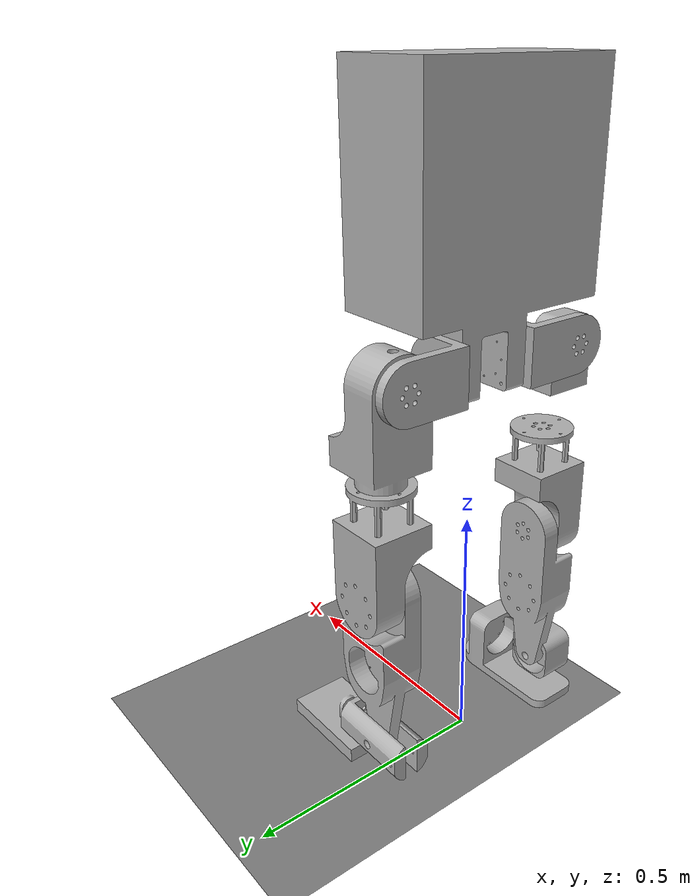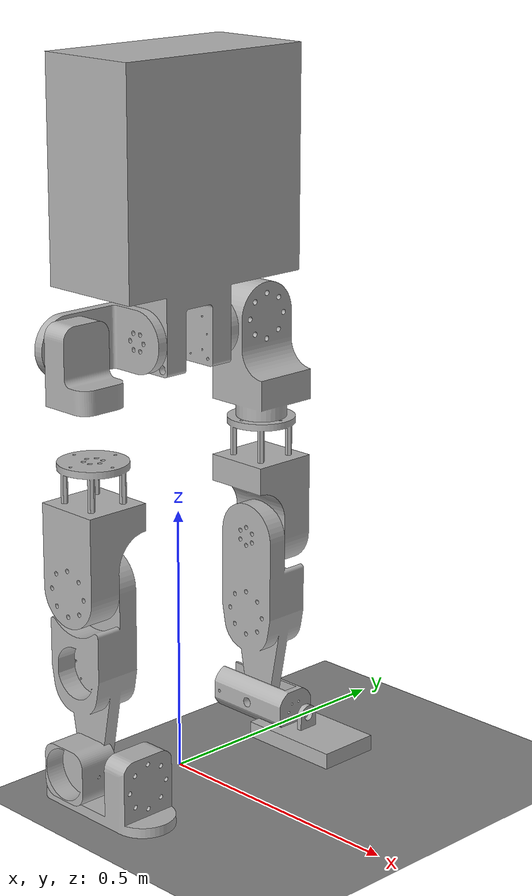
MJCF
<mujoco model="nemo scene">
  <include file="nemo.xml"/>

  <statistic center="1 -0.8 1.1" extent=".3"/>

  <visual>
    <headlight diffuse="0.6 0.6 0.6" ambient="0.1 0.1 0.1" specular="0.9 0.9 0.9"/>
    <rgba haze="0.15 0.25 0.35 1"/>
    <global azimuth="140" elevation="-20"/>
  </visual>

  <asset>
    <texture type="skybox" builtin="gradient" rgb1="0.3 0.5 0.7" rgb2="0 0 0" width="512" height="3072"/>
    <texture type="2d" name="groundplane" builtin="checker" mark="edge" rgb1="0.2 0.3 0.4" rgb2="0.1 0.2 0.3"
      markrgb="0.8 0.8 0.8" width="300" height="300"/>
    <material name="groundplane" texture="groundplane" texuniform="true" texrepeat="5 5" reflectance="0.2"/>
  </asset>

  <worldbody>
    <geom conaffinity="1" contype="1" condim="3" friction="1 .1 .1" name="floor" pos="0 0 0" size="20 20 0.125" type="plane" rgba="0.5 0.5 0.5 1.0"/>
  </worldbody>
</mujoco>

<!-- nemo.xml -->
<mujoco model="nemo">
<compiler angle="radian" meshdir="assets" autolimits="true"/>

  <option timestep="0.001" iterations="8" ls_iterations="4">
    <flag eulerdamp="disable"/>
  </option>

  <custom>
        <numeric data="2500" name="constraint_limit_stiffness"/>
        <numeric data="27000" name="constraint_stiffness"/>
        <numeric data="30" name="constraint_ang_damping"/>
        <numeric data="80" name="constraint_vel_damping"/>
        <numeric data="-0.05" name="ang_damping"/>
        <numeric data="0.5" name="joint_scale_pos"/>
        <numeric data="0.1" name="joint_scale_ang"/>
        <numeric data="0" name="spring_mass_scale"/>
        <numeric data="1" name="spring_inertia_scale"/>
        <numeric data="20" name="matrix_inv_iterations"/>
        <numeric data="15" name="solver_maxls"/>
  </custom>

  <visual>
    <global ellipsoidinertia="true"/>
  </visual>

<default>
    <geom contype="0" conaffinity="0" condim="3" solref="0.005 1"/>
    <equality solref="0.005 1"/>

    <default class="nemo">
      <site rgba="1 0 0 1" size="0.01" group="5"/>
      <joint damping="0.5" armature="0.01" frictionloss="0.1"/>
      <default class="visual">
        <geom group="2" type="mesh" contype="0" conaffinity="0" density="0" material="metallic"/>
      </default>
      <default class="collision">
        <geom contype="1" conaffinity="1" condim="3" friction="1.0 1.0 1.0" group="3" type="sphere" rgba="0 0 0 0"/>
      </default>
    </default>
  </default>

  <asset>
    <material name="metallic" rgba="0.7 0.7 0.7 1"/>
    <material name="black" rgba="0.2 0.2 0.2 1"/>
    <material name="transparent" rgba="0 0 0 0"/>

    <mesh file="pelvis_box.stl"/>
      <mesh file="l_hip_pitch.stl"/>
      <mesh file="l_hip_roll.stl"/>
      <mesh file="l_hip_yaw.stl"/>
      <mesh file="l_knee.stl"/>
      <mesh file="l_foot_pitch.stl"/>
      <mesh file="l_foot_roll.stl"/>

      <mesh file="r_hip_pitch.stl"/>
      <mesh file="r_hip_roll.stl"/>
      <mesh file="r_hip_yaw.stl"/>
      <mesh file="r_knee.stl"/>
      <mesh file="r_foot_pitch.stl"/>
      <mesh file="r_foot_roll.stl"/>

      <mesh file="foot_col.stl"/>
  </asset>

<worldbody>
    <light name="spotlight" mode="targetbodycom" target="pelvis" pos="0 -6 4" cutoff="30"/>
    <body name="pelvis" pos="0 0 0.8319" childclass="nemo">
    <inertial pos ="0.0 0.0 0.24179953312523558" quat="1 0 0 0" mass="7.6770570000000005" diaginertia="0.028726694450146615 0.028726694450146615 0.028726694450146615"/>
    <freejoint name="floating_base"/>
    <light name="tracking" mode="trackcom" pos="0 0 2"/>
    <geom type="mesh" class="visual" mesh="pelvis_box"/>

        <site name="pelvis_back" pos="-0.05 0.0 0.0"/>
        <site name="pelvis_front" pos="0.05 0.0 0.0"/>

        <site name="head" pos="0.0 0.0 0.5"/>

        <body name="l_hip_pitch" pos="0 0.0762 0" quat="1 0 0 0">
            <inertial pos ="-0.04394200000000001 0.057658 0.0" quat="1 0 0 0" mass="0.7960545" diaginertia="0.0002677465920866481 0.0002677465920866481 0.0002677465920866481"/>
            <joint name="l_hip_pitch" axis="0 1 0" range="-3 3"/>
            <geom type="mesh" class="visual" mesh="l_hip_pitch"/>

            <body name="l_hip_roll" pos="-0.05715 0.127 0" quat="1 0 0 0">
                <inertial pos ="0.0493843080656282 0.0 -0.07684796909976649" quat="1 0 0 0" mass="3.91082805" diaginertia="0.0020885499345463655 0.0020885499345463655 0.0020885499345463655"/>
                <joint name="l_hip_roll" axis="1 0 0" range="-0.279253 1.0"/>
                <geom type="mesh" class="visual" mesh="l_hip_roll"/>

                <body name="l_hip_yaw" pos="0.06254 0 -0.1905" quat="1 0 0 0">
                    <inertial pos ="0.0 0.010745175700896245 -0.16477184080887633" quat="1 0 0 0" mass="3.0474375" diaginertia="0.005317699121115497 0.005317699121115497 0.005317699121115497"/>
                    <joint name="l_hip_yaw" axis="0 0 1" range="-2.5 2.5"/>
                    <geom type="mesh" class="visual" mesh="l_hip_yaw"/>

                    <body name="l_knee" pos="0 0 -0.2286" quat="1 0 0 0">
                        <joint name="l_knee" axis="0 1 0" range="-0.3 2"/>
                        <inertial pos ="0.10360317718212292 0.004941471406058302 -0.026917890990596487" quat="1 0 0 0" mass="3.4080436" diaginertia="0.0025045269244811904 0.0025045269244811904 0.0025045269244811904"/>
                        <geom type="mesh" class="visual" mesh="l_knee"/>

                        <body name="l_foot_pitch" pos="0 0.00635 -0.3366" quat="1 0 0 0">
                            <joint name="l_foot_pitch" axis="0 1 0" range="-0.5 0.5"/>
                            <inertial pos ="0.0035560000000000036 0.0 0.0" quat="1 0 0 0" mass="0.8572895" diaginertia="6.937947084078097e-07 6.937947084078097e-07 6.937947084078097e-07"/>
                            <geom type="mesh" class="visual" mesh="l_foot_pitch"/>

                            <body name="l_foot_roll" pos="0.0889 0 0" quat="1 0 0 0">
                                <joint name="l_foot_roll" axis="1 0 0" range="-1 1"/>
                                <inertial pos ="-0.005602856670571986 0.0 0.028940310004584514" quat="1 0 0 0" mass="1.786451" diaginertia="9.93476609435633e-05 9.93476609435633e-05 9.93476609435633e-05"/>
                                <geom type="mesh" class="visual" mesh="l_foot_roll"/>

                                <geom type="mesh" class="collision" mesh="foot_col" name="left_foot"/>

                                <site name="left_foot_p1" pos="0.05 0.0 -0.0762"/>
                                <site name="left_foot_p2" pos="-0.05 0.0 -0.0762"/>
                                <site name="left_foot_p3" pos="0.0 0.05 -0.0762"/>
                            </body>

                        </body>
                    </body>
                </body>
            </body>
        </body>

        <body name="r_hip_pitch" pos="0 -0.0762 0" quat="1 0 0 0">
            <inertial pos ="-0.04394200000000001 -0.057658 0.0" quat="1 0 0 0" mass="0.7960545" diaginertia="0.0002677465920866481 0.0002677465920866481 0.0002677465920866481"/>
            <joint name="r_hip_pitch" axis="0 1 0" range="-3 3"/>
            <geom type="mesh" class="visual" mesh="r_hip_pitch"/>

            <body name="r_hip_roll" pos="-0.05715 -0.127 0" quat="1 0 0 0">
                <inertial pos ="0.0493843080656282 0.0 -0.07684796909976649" quat="1 0 0 0" mass="3.91082805" diaginertia="0.0020885499345463655 0.0020885499345463655 0.0020885499345463655"/>
                <joint name="r_hip_roll" axis="1 0 0" range="-1.0 0.279253"/>
                <geom type="mesh" class="visual" mesh="r_hip_roll"/>

                <body name="r_hip_yaw" pos="0.06254 0 -0.1905" quat="1 0 0 0">
                    <inertial pos ="0.0 -0.010745175700896245 -0.16477184080887633" quat="1 0 0 0" mass="3.0474375" diaginertia="0.005317699121115497 0.005317699121115497 0.005317699121115497"/>
                    <joint name="r_hip_yaw" axis="0 0 1" range="-2.5 2.5"/>
                    <geom type="mesh" class="visual" mesh="r_hip_yaw"/>

                    <body name="r_knee" pos="0 0 -0.2286" quat="1 0 0 0">
                        <joint name="r_knee" axis="0 1 0" range="-0.3 2"/>
                        <inertial pos ="0.10360317718212292 -0.004941471406058302 -0.026917890990596487" quat="1 0 0 0" mass="3.4080436" diaginertia="0.0025045269244811904 0.0025045269244811904 0.0025045269244811904"/>
                        <geom type="mesh" class="visual" mesh="r_knee"/>

                        <body name="r_foot_pitch" pos="0 -0.00635 -0.3366" quat="1 0 0 0">
                            <joint name="r_foot_pitch" axis="0 1 0" range="-0.5 0.5"/>
                            <inertial pos ="0.0035560000000000036 0.0 0.0" quat="1 0 0 0" mass="0.8572895" diaginertia="6.937947084078097e-07 6.937947084078097e-07 6.937947084078097e-07"/>
                            <geom type="mesh" class="visual" mesh="r_foot_pitch"/>

                            <body name="r_foot_roll" pos="0.0889 0 0" quat="1 0 0 0">
                                <joint name="r_foot_roll" axis="1 0 0" range="-1 1"/>
                                <inertial pos ="-0.005602856670571986 0.0 0.028940310004584514" quat="1 0 0 0" mass="1.786451" diaginertia="9.93476609435633e-05 9.93476609435633e-05 9.93476609435633e-05"/>
                                <geom type="mesh" class="visual" mesh="r_foot_roll"/>

                                <geom type="mesh" class="collision" mesh="foot_col" name="right_foot"/>

                                <site name="right_foot_p1" pos="0.05 0.0 -0.0762"/>
                                <site name="right_foot_p2" pos="-0.05 0.0 -0.0762"/>
                                <site name="right_foot_p3" pos="0.0 -0.05 -0.0762"/>
                            </body>

                        </body>
                    </body>
                </body>
            </body>
        </body>

    </body>

</worldbody>

<actuator>
  <position kp="400.0" class="nemo" name="l_hip_pitch" joint="l_hip_pitch" forcerange="-34 34" inheritrange="1"/>
  <position kp="400.0" class="nemo" name="l_hip_roll" joint="l_hip_roll" forcerange="-34 34" inheritrange="1"/>
  <position kp="400.0" class="nemo" name="l_hip_yaw" joint="l_hip_yaw" forcerange="-34 34" inheritrange="1"/>
  <position kp="400.0" class="nemo" name="l_knee" joint="l_knee" forcerange="-34 34" inheritrange="1"/>
  <position kp="400.0" class="nemo" name="l_foot_pitch" joint="l_foot_pitch" forcerange="-34 34" inheritrange="1"/>
  <position kp="400.0" class="nemo" name="l_foot_roll" joint="l_foot_roll" forcerange="-22 22" inheritrange="1"/>

  <position kp="400.0" class="nemo" name="r_hip_pitch" joint="r_hip_pitch" forcerange="-34 34" inheritrange="1"/>
  <position kp="400.0" class="nemo" name="r_hip_roll" joint="r_hip_roll" forcerange="-34 34" inheritrange="1"/>
  <position kp="400.0" class="nemo" name="r_hip_yaw" joint="r_hip_yaw" forcerange="-34 34" inheritrange="1"/>
  <position kp="400.0" class="nemo" name="r_knee" joint="r_knee" forcerange="-34 34" inheritrange="1"/>
  <position kp="400.0" class="nemo" name="r_foot_pitch" joint="r_foot_pitch" forcerange="-34 34" inheritrange="1"/>
  <position kp="400.0" class="nemo" name="r_foot_roll" joint="r_foot_roll" forcerange="-22 22" inheritrange="1"/>

  <velocity kv="40.0" class="nemo" name="l_hip_pitch_v" joint="l_hip_pitch" forcerange="-32 32" ctrlrange="-20 20"/>
  <velocity kv="40.0" class="nemo" name="l_hip_roll_v" joint="l_hip_roll" forcerange="-32 32" ctrlrange="-20 20"/>
  <velocity kv="40.0" class="nemo" name="l_hip_yaw_v" joint="l_hip_yaw" forcerange="-32 32" ctrlrange="-20 20"/>
  <velocity kv="40.0" class="nemo" name="l_knee_v" joint="l_knee" forcerange="-32 32" ctrlrange="-20 20"/>
  <velocity kv="40.0" class="nemo" name="l_foot_pitch_v" joint="l_foot_pitch" forcerange="-32 32" ctrlrange="-20 20"/>
  <velocity kv="40.0" class="nemo" name="l_foot_roll_v" joint="l_foot_roll" forcerange="-21 21" ctrlrange="-20 20"/>

  <velocity kv="40.0" class="nemo" name="r_hip_pitch_v" joint="r_hip_pitch" forcerange="-32 32" ctrlrange="-20 20"/>
  <velocity kv="40.0" class="nemo" name="r_hip_roll_v" joint="r_hip_roll" forcerange="-32 32" ctrlrange="-20 20"/>
  <velocity kv="40.0" class="nemo" name="r_hip_yaw_v" joint="r_hip_yaw" forcerange="-32 32" ctrlrange="-20 20"/>
  <velocity kv="40.0" class="nemo" name="r_knee_v" joint="r_knee" forcerange="-32 32" ctrlrange="-20 20"/>
  <velocity kv="40.0" class="nemo" name="r_foot_pitch_v" joint="r_foot_pitch" forcerange="-32 32" ctrlrange="-20 20"/>
  <velocity kv="40.0" class="nemo" name="r_foot_roll_v" joint="r_foot_roll" forcerange="-21 21" ctrlrange="-20 20"/>
</actuator>

<keyframe>
    <key name="stand"
      qpos="
      0 0 0.8319
      1 0 0 0
      0 0 0 0 0 0
      0 0 0 0 0 0
      "/>
</keyframe>

</mujoco>
